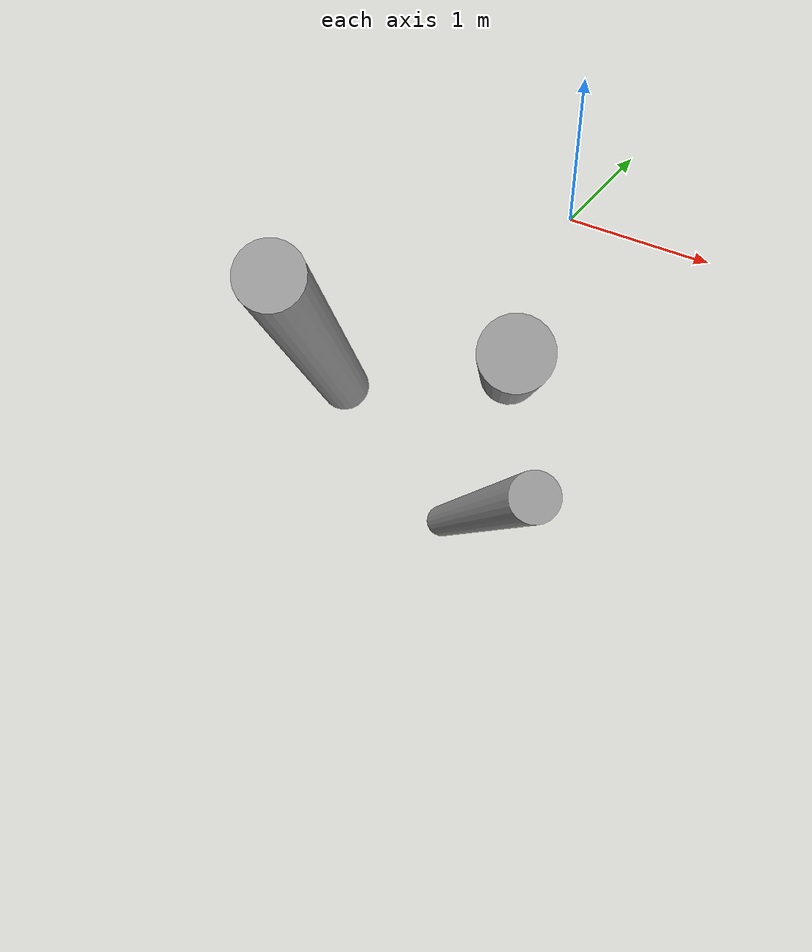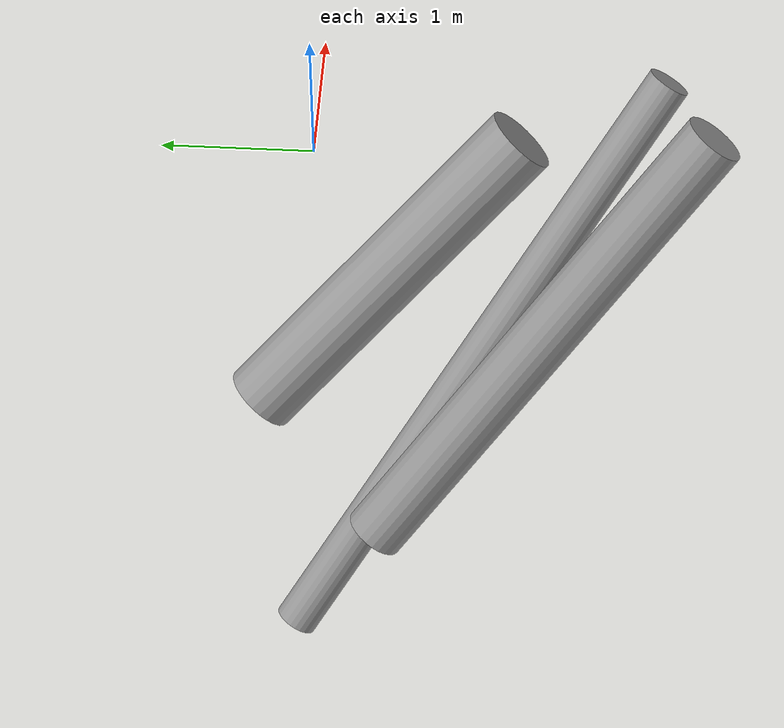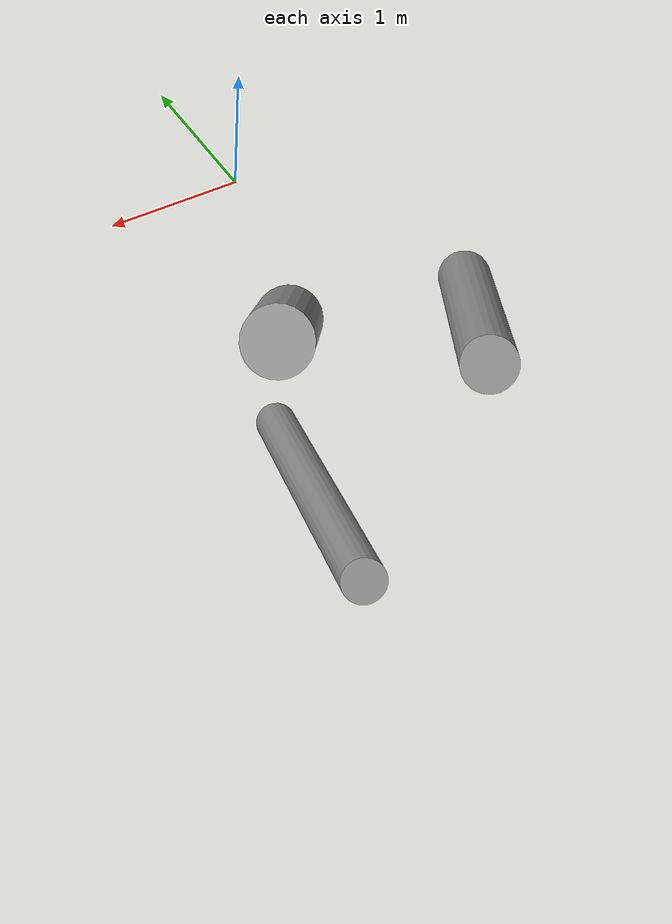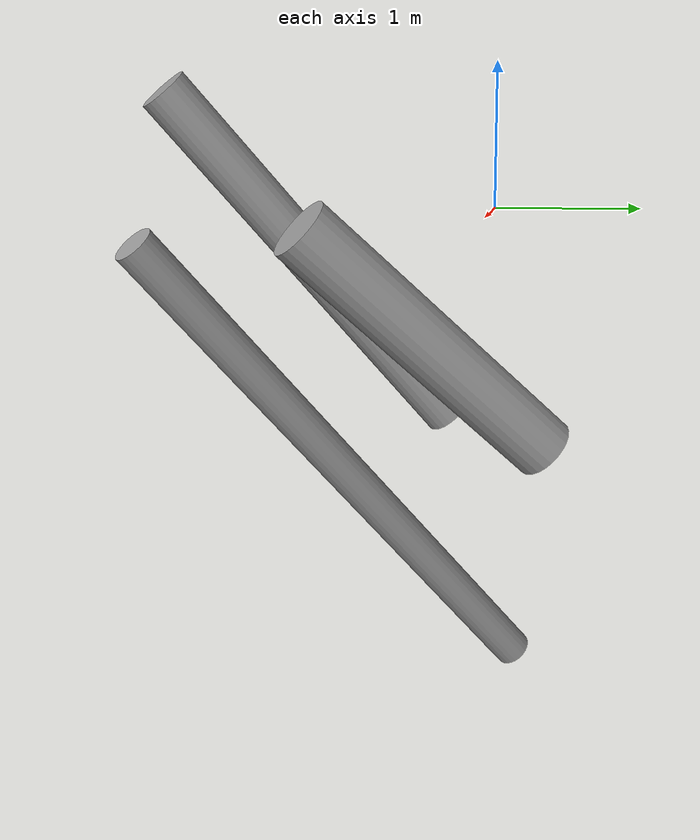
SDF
<?xml version='1.0'?>
<sdf version='1.6'>
  <model name='Rocks_Better3'>
    <link name='link_0'>
      <inertial>
        <mass>3.61262</mass>
        <inertia>
          <ixx>3.96532</ixx>
          <ixy>0</ixy>
          <ixz>0</ixz>
          <iyy>3.96532</iyy>
          <iyz>0</iyz>
          <izz>0.0722524</izz>
        </inertia>
        <pose frame=''>0 0 0 0 -0 0</pose>
      </inertial>
      <pose frame=''>-1.09726 -1.52977 -0.521485 0.680547 0.258824 0.204312</pose>
      <gravity>0</gravity>
      <self_collide>0</self_collide>
      <kinematic>0</kinematic>
      <enable_wind>1</enable_wind>
      <visual name='visual'>
        <pose frame=''>0 0 0 0 -0 0</pose>
        <geometry>
          <cylinder>
            <radius>0.2</radius>
            <length>3.61269</length>
          </cylinder>
        </geometry>
        <material>
          <lighting>1</lighting>
          <script>
            <uri>file://media/materials/scripts/gazebo.material</uri>
            <name>Gazebo/Grey</name>
          </script>
          <shader type='vertex'>
            <normal_map>__default__</normal_map>
          </shader>
          <ambient>0.3 0.3 0.3 1</ambient>
          <diffuse>0.7 0.7 0.7 1</diffuse>
          <specular>0.01 0.01 0.01 1</specular>
          <emissive>0 0 0 1</emissive>
        </material>
        <transparency>0</transparency>
        <cast_shadows>1</cast_shadows>
      </visual>
      <collision name='collision'>
        <laser_retro>0</laser_retro>
        <max_contacts>10</max_contacts>
        <pose frame=''>0 0 0 0 -0 0</pose>
        <geometry>
          <cylinder>
            <radius>0.2</radius>
            <length>3.61269</length>
          </cylinder>
        </geometry>
        <surface>
          <friction>
            <ode>
              <mu>1</mu>
              <mu2>1</mu2>
              <fdir1>0 0 0</fdir1>
              <slip1>0</slip1>
              <slip2>0</slip2>
            </ode>
            <torsional>
              <coefficient>1</coefficient>
              <patch_radius>0</patch_radius>
              <surface_radius>0</surface_radius>
              <use_patch_radius>1</use_patch_radius>
              <ode>
                <slip>0</slip>
              </ode>
            </torsional>
          </friction>
          <bounce>
            <restitution_coefficient>0</restitution_coefficient>
            <threshold>1e+06</threshold>
          </bounce>
          <contact>
            <collide_without_contact>0</collide_without_contact>
            <collide_without_contact_bitmask>1</collide_without_contact_bitmask>
            <collide_bitmask>1</collide_bitmask>
            <ode>
              <soft_cfm>0</soft_cfm>
              <soft_erp>0.2</soft_erp>
              <kp>1e+13</kp>
              <kd>1</kd>
              <max_vel>0.01</max_vel>
              <min_depth>0</min_depth>
            </ode>
            <bullet>
              <split_impulse>1</split_impulse>
              <split_impulse_penetration_threshold>-0.01</split_impulse_penetration_threshold>
              <soft_cfm>0</soft_cfm>
              <soft_erp>0.2</soft_erp>
              <kp>1e+13</kp>
              <kd>1</kd>
            </bullet>
          </contact>
        </surface>
      </collision>
    </link>
    <link name='link_1'>
      <inertial>
        <mass>2.61121</mass>
        <inertia>
          <ixx>1.52449</ixx>
          <ixy>0</ixy>
          <ixz>0</ixz>
          <iyy>1.52449</iyy>
          <iyz>0</iyz>
          <izz>0.0816002</izz>
        </inertia>
        <pose frame=''>0 0 0 0 -0 0</pose>
      </inertial>
      <pose frame=''>-0.128715 -0.489315 -1.00974 0.752016 0.410169 0.076827</pose>
      <gravity>0</gravity>
      <self_collide>0</self_collide>
      <kinematic>0</kinematic>
      <enable_wind>0</enable_wind>
      <visual name='visual'>
        <pose frame=''>0 0 0 0 -0 0</pose>
        <geometry>
          <cylinder>
            <radius>0.25</radius>
            <length>2.61121</length>
          </cylinder>
        </geometry>
        <material>
          <lighting>1</lighting>
          <script>
            <uri>file://media/materials/scripts/gazebo.material</uri>
            <name>Gazebo/Grey</name>
          </script>
          <shader type='vertex'>
            <normal_map>__default__</normal_map>
          </shader>
          <ambient>0.3 0.3 0.3 1</ambient>
          <diffuse>0.7 0.7 0.7 1</diffuse>
          <specular>0.01 0.01 0.01 1</specular>
          <emissive>0 0 0 1</emissive>
        </material>
        <transparency>0</transparency>
        <cast_shadows>1</cast_shadows>
      </visual>
      <collision name='collision'>
        <laser_retro>0</laser_retro>
        <max_contacts>10</max_contacts>
        <pose frame=''>0 0 0 0 -0 0</pose>
        <geometry>
          <cylinder>
            <radius>0.25</radius>
            <length>2.6112</length>
          </cylinder>
        </geometry>
        <surface>
          <friction>
            <ode>
              <mu>1</mu>
              <mu2>1</mu2>
              <fdir1>0 0 0</fdir1>
              <slip1>0</slip1>
              <slip2>0</slip2>
            </ode>
            <torsional>
              <coefficient>1</coefficient>
              <patch_radius>0</patch_radius>
              <surface_radius>0</surface_radius>
              <use_patch_radius>1</use_patch_radius>
              <ode>
                <slip>0</slip>
              </ode>
            </torsional>
          </friction>
          <bounce>
            <restitution_coefficient>0</restitution_coefficient>
            <threshold>1e+06</threshold>
          </bounce>
          <contact>
            <collide_without_contact>0</collide_without_contact>
            <collide_without_contact_bitmask>1</collide_without_contact_bitmask>
            <collide_bitmask>1</collide_bitmask>
            <ode>
              <soft_cfm>0</soft_cfm>
              <soft_erp>0.2</soft_erp>
              <kp>1e+13</kp>
              <kd>1</kd>
              <max_vel>0.01</max_vel>
              <min_depth>0</min_depth>
            </ode>
            <bullet>
              <split_impulse>1</split_impulse>
              <split_impulse_penetration_threshold>-0.01</split_impulse_penetration_threshold>
              <soft_cfm>0</soft_cfm>
              <soft_erp>0.2</soft_erp>
              <kp>1e+13</kp>
              <kd>1</kd>
            </bullet>
          </contact>
        </surface>
      </collision>
    </link>
    <link name='link_2'>
      <inertial>
        <mass>4.80164</mass>
        <inertia>
          <ixx>9.25231</ixx>
          <ixy>0</ixy>
          <ixz>0</ixz>
          <iyy>9.25231</iyy>
          <iyz>0</iyz>
          <izz>0.0540185</izz>
        </inertia>
        <pose frame=''>0 0 0 0 -0 0</pose>
      </inertial>
      <pose frame=''>-0.060217 -1.09062 -1.98725 0.650442 0.360193 0.262018</pose>
      <gravity>0</gravity>
      <self_collide>0</self_collide>
      <kinematic>0</kinematic>
      <enable_wind>0</enable_wind>
      <visual name='visual'>
        <pose frame=''>0 0 0 0 -0 0</pose>
        <geometry>
          <cylinder>
            <radius>0.15</radius>
            <length>4.8016</length>
          </cylinder>
        </geometry>
        <material>
          <lighting>1</lighting>
          <script>
            <uri>file://media/materials/scripts/gazebo.material</uri>
            <name>Gazebo/Grey</name>
          </script>
          <shader type='vertex'>
            <normal_map>__default__</normal_map>
          </shader>
          <ambient>0.3 0.3 0.3 1</ambient>
          <diffuse>0.7 0.7 0.7 1</diffuse>
          <specular>0.01 0.01 0.01 1</specular>
          <emissive>0 0 0 1</emissive>
        </material>
        <transparency>0</transparency>
        <cast_shadows>1</cast_shadows>
      </visual>
      <collision name='collision'>
        <laser_retro>0</laser_retro>
        <max_contacts>10</max_contacts>
        <pose frame=''>0 0 0 0 -0 0</pose>
        <geometry>
          <cylinder>
            <radius>0.15</radius>
            <length>4.8016</length>
          </cylinder>
        </geometry>
        <surface>
          <friction>
            <ode>
              <mu>1</mu>
              <mu2>1</mu2>
              <fdir1>0 0 0</fdir1>
              <slip1>0</slip1>
              <slip2>0</slip2>
            </ode>
            <torsional>
              <coefficient>1</coefficient>
              <patch_radius>0</patch_radius>
              <surface_radius>0</surface_radius>
              <use_patch_radius>1</use_patch_radius>
              <ode>
                <slip>0</slip>
              </ode>
            </torsional>
          </friction>
          <bounce>
            <restitution_coefficient>0</restitution_coefficient>
            <threshold>1e+06</threshold>
          </bounce>
          <contact>
            <collide_without_contact>0</collide_without_contact>
            <collide_without_contact_bitmask>1</collide_without_contact_bitmask>
            <collide_bitmask>1</collide_bitmask>
            <ode>
              <soft_cfm>0</soft_cfm>
              <soft_erp>0.2</soft_erp>
              <kp>1e+13</kp>
              <kd>1</kd>
              <max_vel>0.01</max_vel>
              <min_depth>0</min_depth>
            </ode>
            <bullet>
              <split_impulse>1</split_impulse>
              <split_impulse_penetration_threshold>-0.01</split_impulse_penetration_threshold>
              <soft_cfm>0</soft_cfm>
              <soft_erp>0.2</soft_erp>
              <kp>1e+13</kp>
              <kd>1</kd>
            </bullet>
          </contact>
        </surface>
      </collision>
    </link>
    <static>0</static>
    <allow_auto_disable>1</allow_auto_disable>
  </model>
</sdf>
